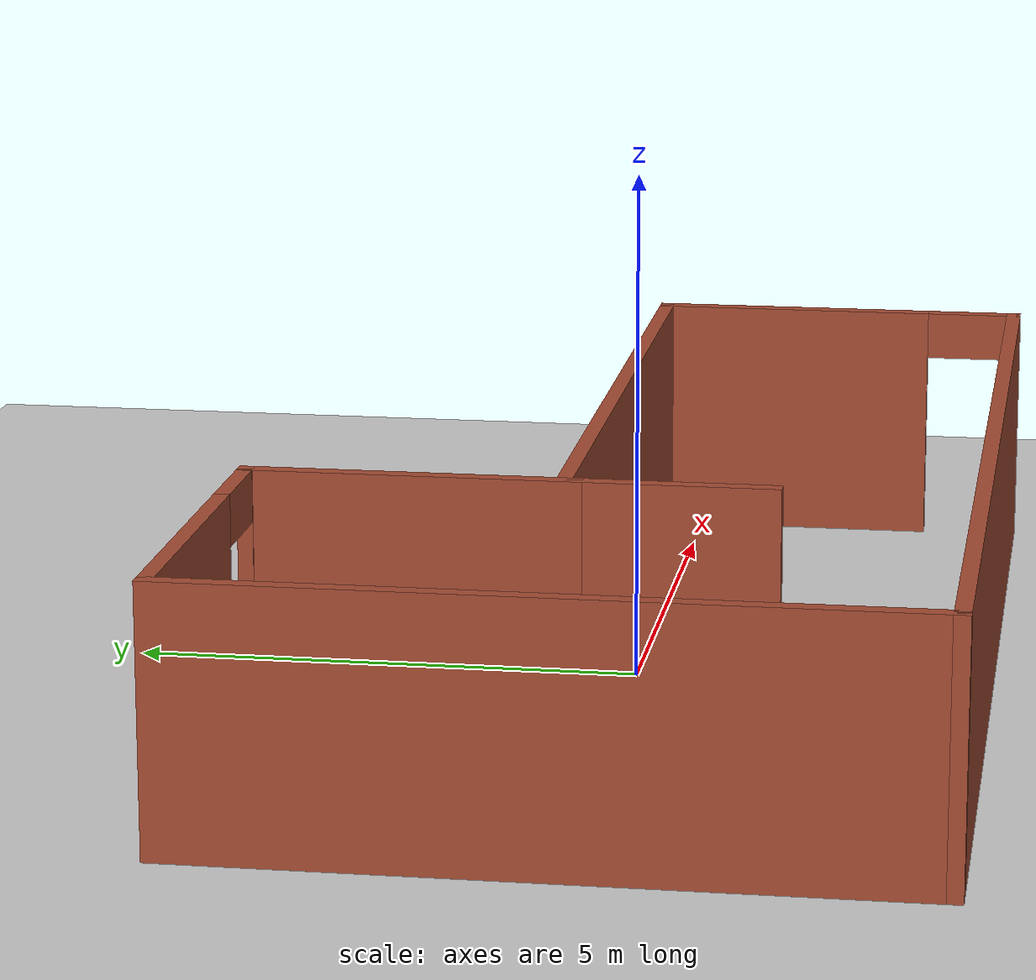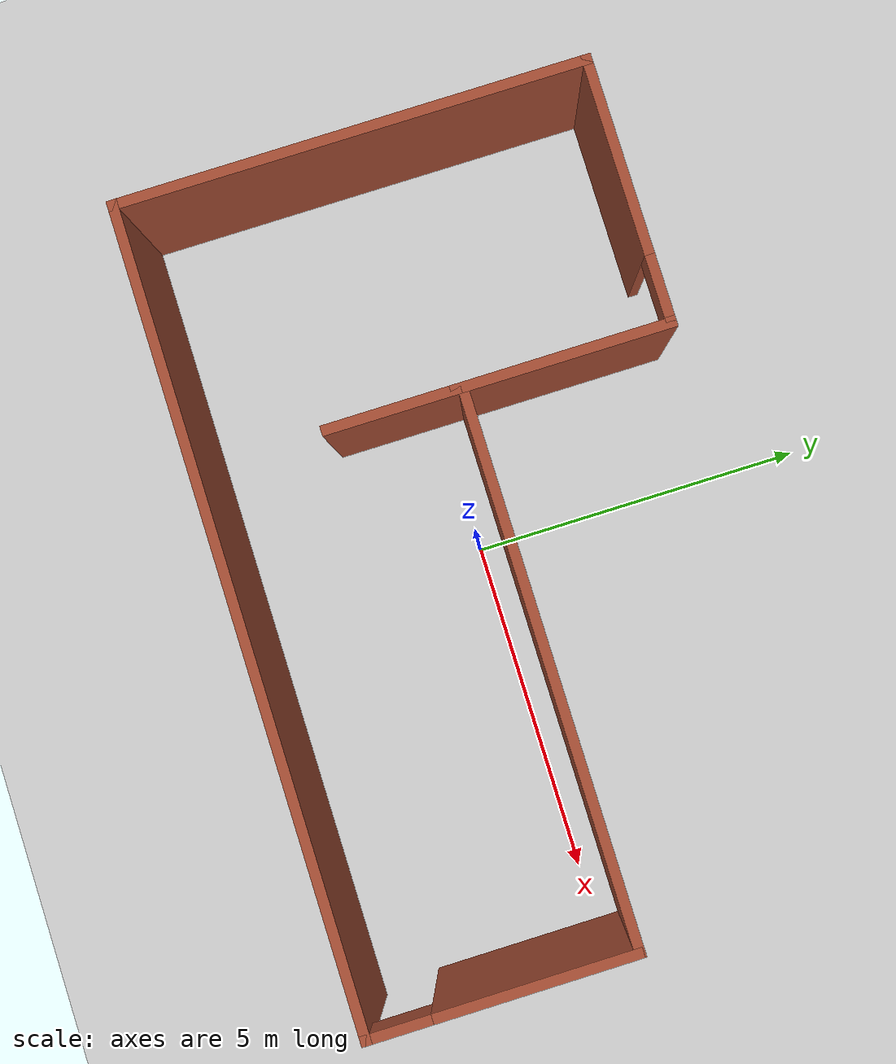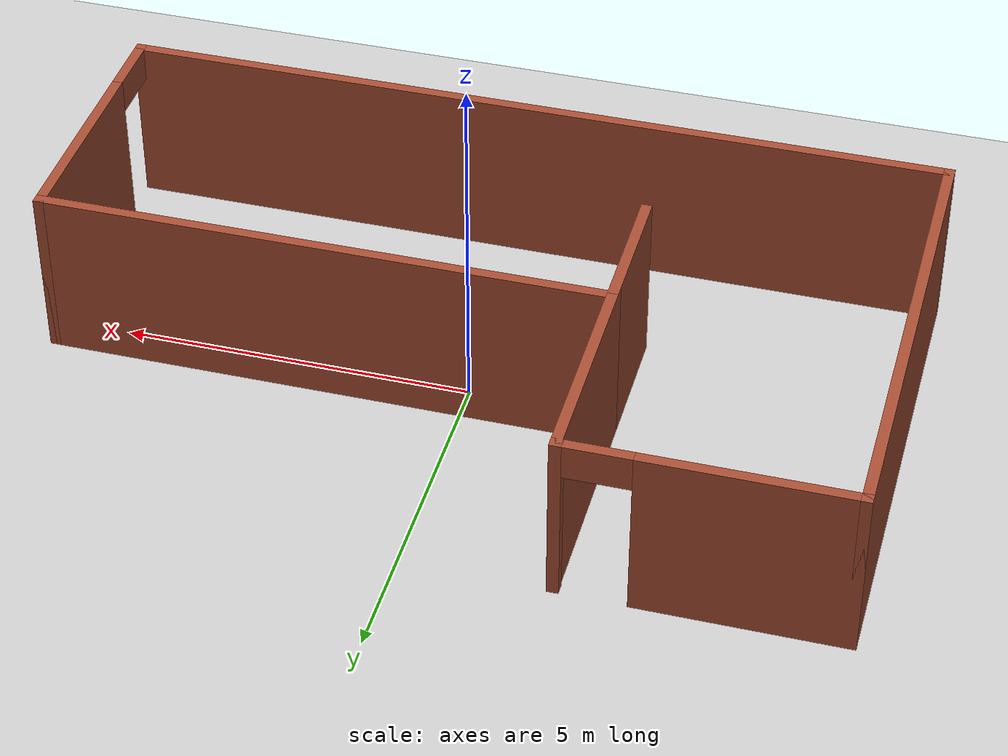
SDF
<?xml version="1.0" ?>

<sdf version="1.5">
  <!-- We use a custom world for the robot so that it can be tested in a simple house -->
  <world name="house_obstacles">

    <!-- Add a ground plane -->
    <include>
        <uri>model://ground_plane</uri>
        <material>
            <script>
                <uri>file://media/materials/scripts/gazebo.material</uri>
            </script>
        </material>
    </include>

    <!-- Global light source -->
    <include>
      <uri>model://sun</uri>
    </include>

    <!-- Apartment Walls -->
    <include>
      <uri>model://house_obstacles</uri>
      <pose>0 0 0 0 0 0</pose>
    </include>

  </world>
</sdf>

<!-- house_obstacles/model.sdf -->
<sdf version='1.7'>
  <model name='house_obstacles'>
    <pose>-0.765 -1.285 0 0 -0 0</pose>
    <link name='Wall_0'>
      <collision name='Wall_0_Collision'>
        <geometry>
          <box>
            <size>8 0.15 2.5</size>
          </box>
        </geometry>
        <pose>0 0 1.25 0 -0 0</pose>
      </collision>
      <visual name='Wall_0_Visual'>
        <pose>0 0 1.25 0 -0 0</pose>
        <geometry>
          <box>
            <size>8 0.15 2.5</size>
          </box>
        </geometry>
        <material>
          <script>
            <uri>file://media/materials/scripts/gazebo.material</uri>
            <name>Gazebo/Bricks</name>
          </script>
          <ambient>1 1 1 1</ambient>
        </material>
        <meta>
          <layer>0</layer>
        </meta>
      </visual>
      <pose>2 0.425 0 0 -0 0</pose>
    </link>
    <link name='Wall_1'>
      <pose>5.925 -1.5 0 0 -0 -1.5708</pose>
      <visual name='Wall_1_Visual_0'>
        <pose>-0.505197 0 1.25 0 -0 0</pose>
        <geometry>
          <box>
            <size>2.98961 0.15 2.5</size>
          </box>
        </geometry>
        <material>
          <script>
            <uri>file://media/materials/scripts/gazebo.material</uri>
            <name>Gazebo/Bricks</name>
          </script>
          <ambient>1 1 1 1</ambient>
        </material>
        <meta>
          <layer>0</layer>
        </meta>
      </visual>
      <collision name='Wall_1_Collision_0'>
        <geometry>
          <box>
            <size>2.98961 0.15 2.5</size>
          </box>
        </geometry>
        <pose>-0.505197 0 1.25 0 -0 0</pose>
      </collision>
      <visual name='Wall_1_Visual_1'>
        <pose>1.9448 0 1.25 0 -0 0</pose>
        <geometry>
          <box>
            <size>0.110394 0.15 2.5</size>
          </box>
        </geometry>
        <material>
          <script>
            <uri>file://media/materials/scripts/gazebo.material</uri>
            <name>Gazebo/Bricks</name>
          </script>
          <ambient>1 1 1 1</ambient>
        </material>
        <meta>
          <layer>0</layer>
        </meta>
      </visual>
      <collision name='Wall_1_Collision_1'>
        <geometry>
          <box>
            <size>0.110394 0.15 2.5</size>
          </box>
        </geometry>
        <pose>1.9448 0 1.25 0 -0 0</pose>
      </collision>
      <visual name='Wall_1_Visual_2'>
        <pose>1.43961 0 2.25 0 -0 0</pose>
        <geometry>
          <box>
            <size>0.9 0.15 0.5</size>
          </box>
        </geometry>
        <material>
          <script>
            <uri>file://media/materials/scripts/gazebo.material</uri>
            <name>Gazebo/Bricks</name>
          </script>
          <ambient>1 1 1 1</ambient>
        </material>
        <meta>
          <layer>0</layer>
        </meta>
      </visual>
      <collision name='Wall_1_Collision_2'>
        <geometry>
          <box>
            <size>0.9 0.15 0.5</size>
          </box>
        </geometry>
        <pose>1.43961 0 2.25 0 -0 0</pose>
      </collision>
    </link>
    <link name='Wall_2'>
      <collision name='Wall_2_Collision'>
        <geometry>
          <box>
            <size>12 0.15 2.5</size>
          </box>
        </geometry>
        <pose>0 0 1.25 0 -0 0</pose>
      </collision>
      <visual name='Wall_2_Visual'>
        <pose>0 0 1.25 0 -0 0</pose>
        <geometry>
          <box>
            <size>12 0.15 2.5</size>
          </box>
        </geometry>
        <material>
          <script>
            <uri>file://media/materials/scripts/gazebo.material</uri>
            <name>Gazebo/Bricks</name>
          </script>
          <ambient>1 1 1 1</ambient>
        </material>
        <meta>
          <layer>0</layer>
        </meta>
      </visual>
      <pose>0 -3.425 0 0 -0 3.14159</pose>
    </link>
    <link name='Wall_3'>
      <collision name='Wall_3_Collision'>
        <geometry>
          <box>
            <size>7 0.15 2.5</size>
          </box>
        </geometry>
        <pose>0 0 1.25 0 -0 0</pose>
      </collision>
      <visual name='Wall_3_Visual'>
        <pose>0 0 1.25 0 -0 0</pose>
        <geometry>
          <box>
            <size>7 0.15 2.5</size>
          </box>
        </geometry>
        <material>
          <script>
            <uri>file://media/materials/scripts/gazebo.material</uri>
            <name>Gazebo/Bricks</name>
          </script>
          <ambient>1 1 1 1</ambient>
        </material>
        <meta>
          <layer>0</layer>
        </meta>
      </visual>
      <pose>-5.925 -0 0 0 -0 1.5708</pose>
    </link>
    <link name='Wall_4'>
      <pose>-4 3.425 0 0 -0 0</pose>
      <visual name='Wall_4_Visual_0'>
        <pose>-0.531786 0 1.25 0 -0 0</pose>
        <geometry>
          <box>
            <size>2.93643 0.15 2.5</size>
          </box>
        </geometry>
        <material>
          <script>
            <uri>file://media/materials/scripts/gazebo.material</uri>
            <name>Gazebo/Bricks</name>
          </script>
          <ambient>1 1 1 1</ambient>
        </material>
        <meta>
          <layer>0</layer>
        </meta>
      </visual>
      <collision name='Wall_4_Collision_0'>
        <geometry>
          <box>
            <size>2.93643 0.15 2.5</size>
          </box>
        </geometry>
        <pose>-0.531786 0 1.25 0 -0 0</pose>
      </collision>
      <visual name='Wall_4_Visual_1'>
        <pose>1.91821 0 1.25 0 -0 0</pose>
        <geometry>
          <box>
            <size>0.163572 0.15 2.5</size>
          </box>
        </geometry>
        <material>
          <script>
            <uri>file://media/materials/scripts/gazebo.material</uri>
            <name>Gazebo/Bricks</name>
          </script>
          <ambient>1 1 1 1</ambient>
        </material>
        <meta>
          <layer>0</layer>
        </meta>
      </visual>
      <collision name='Wall_4_Collision_1'>
        <geometry>
          <box>
            <size>0.163572 0.15 2.5</size>
          </box>
        </geometry>
        <pose>1.91821 0 1.25 0 -0 0</pose>
      </collision>
      <visual name='Wall_4_Visual_2'>
        <pose>1.38643 0 2.25 0 -0 0</pose>
        <geometry>
          <box>
            <size>0.9 0.15 0.5</size>
          </box>
        </geometry>
        <material>
          <script>
            <uri>file://media/materials/scripts/gazebo.material</uri>
            <name>Gazebo/Bricks</name>
          </script>
          <ambient>1 1 1 1</ambient>
        </material>
        <meta>
          <layer>0</layer>
        </meta>
      </visual>
      <collision name='Wall_4_Collision_2'>
        <geometry>
          <box>
            <size>0.9 0.15 0.5</size>
          </box>
        </geometry>
        <pose>1.38643 0 2.25 0 -0 0</pose>
      </collision>
    </link>
    <link name='Wall_5'>
      <collision name='Wall_5_Collision'>
        <geometry>
          <box>
            <size>3.25 0.15 2.5</size>
          </box>
        </geometry>
        <pose>0 0 1.25 0 -0 0</pose>
      </collision>
      <visual name='Wall_5_Visual'>
        <pose>0 0 1.25 0 -0 0</pose>
        <geometry>
          <box>
            <size>3.25 0.15 2.5</size>
          </box>
        </geometry>
        <material>
          <script>
            <uri>file://media/materials/scripts/gazebo.material</uri>
            <name>Gazebo/Bricks</name>
          </script>
          <ambient>1 1 1 1</ambient>
        </material>
        <meta>
          <layer>0</layer>
        </meta>
      </visual>
      <pose>-2.075 1.875 0 0 -0 -1.5708</pose>
    </link>
    <link name='Wall_6'>
      <collision name='Wall_6_Collision'>
        <geometry>
          <box>
            <size>2 0.15 2.5</size>
          </box>
        </geometry>
        <pose>0 0 1.25 0 -0 0</pose>
      </collision>
      <visual name='Wall_6_Visual'>
        <pose>0 0 1.25 0 -0 0</pose>
        <geometry>
          <box>
            <size>2 0.15 2.5</size>
          </box>
        </geometry>
        <material>
          <script>
            <uri>file://media/materials/scripts/gazebo.material</uri>
            <name>Gazebo/Bricks</name>
          </script>
          <ambient>1 1 1 1</ambient>
        </material>
        <meta>
          <layer>0</layer>
        </meta>
      </visual>
      <pose>-2.075 -0.6 0 0 -0 -1.5708</pose>
    </link>
    <static>1</static>
  </model>
</sdf>
